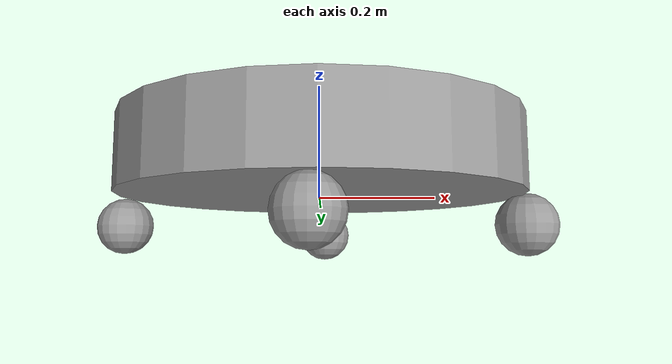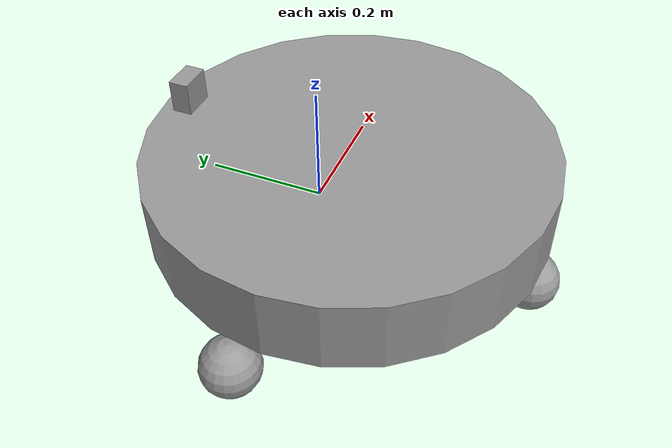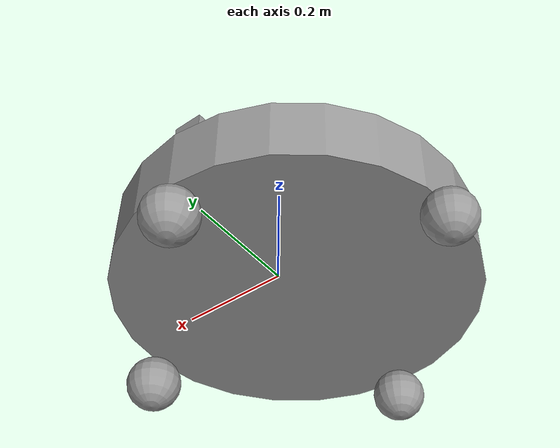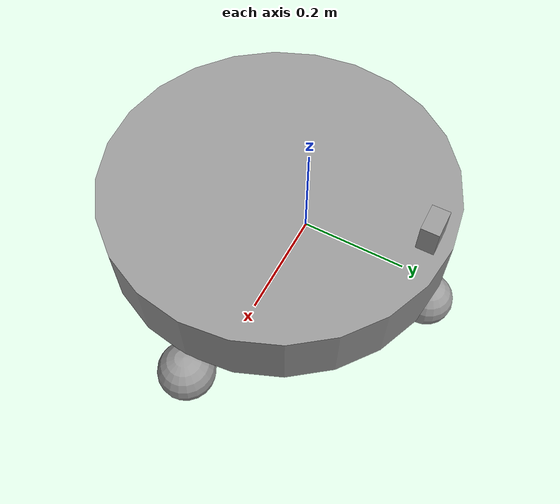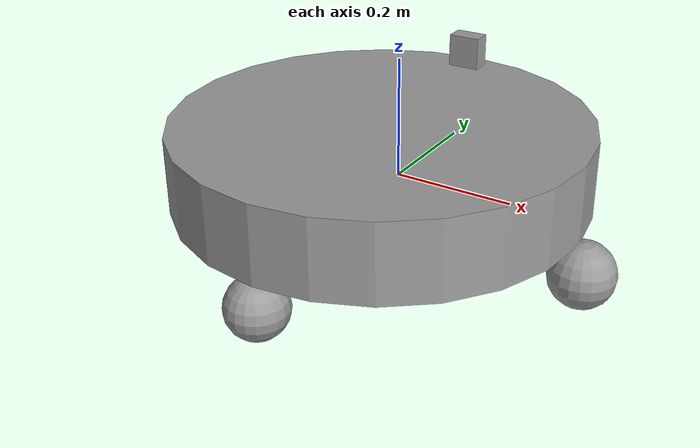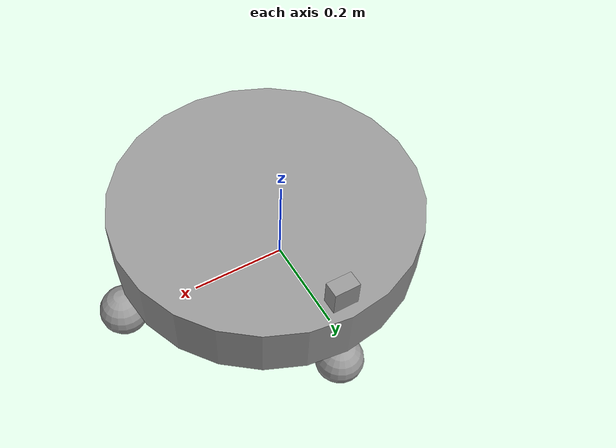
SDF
<?xml version='1.0'?>
<sdf version='1.6'>
  <model name='robo'>
    <link name='link_1'>
      <inertial>
        <mass>0.0548388</mass>
        <inertia>
          <ixx>0.0015762</ixx>
          <ixy>0</ixy>
          <ixz>0</ixz>
          <iyy>0.0015762</iyy>
          <iyz>0</iyz>
          <izz>0.00300979</izz>
        </inertia>
        <pose frame=''>0 0 0 0 -0 0</pose>
      </inertial>
      <pose frame=''>0.002875 -0.057073 0.058436 0 -0 0</pose>
      <gravity>1</gravity>
      <self_collide>0</self_collide>
      <kinematic>0</kinematic>
      <enable_wind>0</enable_wind>
      <visual name='visual'>
        <pose frame=''>0 0 0 0 -0 0</pose>
        <geometry>
          <cylinder>
            <radius>0.331314</radius>
            <length>0.124909</length>
          </cylinder>
        </geometry>
        <material>
          <lighting>1</lighting>
          <script>
            <uri>file://media/materials/scripts/gazebo.material</uri>
            <name>Gazebo/Grey</name>
          </script>
          <emissive>0 0 0 1</emissive>
          <shader type='vertex'>
            <normal_map>__default__</normal_map>
          </shader>
          <ambient>0.3 0.3 0.3 1</ambient>
          <diffuse>0.7 0.7 0.7 1</diffuse>
          <specular>0.01 0.01 0.01 1</specular>
        </material>
        <transparency>0</transparency>
        <cast_shadows>1</cast_shadows>
      </visual>
      <collision name='collision'>
        <laser_retro>0</laser_retro>
        <max_contacts>10</max_contacts>
        <pose frame=''>0 0 0 0 -0 0</pose>
        <geometry>
          <cylinder>
            <radius>0.331314</radius>
            <length>0.124909</length>
          </cylinder>
        </geometry>
        <surface>
          <friction>
            <ode>
              <mu>1</mu>
              <mu2>1</mu2>
              <fdir1>0 0 0</fdir1>
              <slip1>0</slip1>
              <slip2>0</slip2>
            </ode>
            <torsional>
              <coefficient>1</coefficient>
              <patch_radius>0</patch_radius>
              <surface_radius>0</surface_radius>
              <use_patch_radius>1</use_patch_radius>
              <ode>
                <slip>0</slip>
              </ode>
            </torsional>
          </friction>
          <bounce>
            <restitution_coefficient>0</restitution_coefficient>
            <threshold>1e+06</threshold>
          </bounce>
          <contact>
            <collide_without_contact>0</collide_without_contact>
            <collide_without_contact_bitmask>1</collide_without_contact_bitmask>
            <collide_bitmask>1</collide_bitmask>
            <ode>
              <soft_cfm>0</soft_cfm>
              <soft_erp>0.2</soft_erp>
              <kp>1e+13</kp>
              <kd>1</kd>
              <max_vel>0.01</max_vel>
              <min_depth>0</min_depth>
            </ode>
            <bullet>
              <split_impulse>1</split_impulse>
              <split_impulse_penetration_threshold>-0.01</split_impulse_penetration_threshold>
              <soft_cfm>0</soft_cfm>
              <soft_erp>0.2</soft_erp>
              <kp>1e+13</kp>
              <kd>1</kd>
            </bullet>
          </contact>
        </surface>
      </collision>
    </link>
    <link name='link_2'>
      <inertial>
        <mass>0.00110598</mass>
        <inertia>
          <ixx>1.18e-06</ixx>
          <ixy>0</ixy>
          <ixz>0</ixz>
          <iyy>1.18e-06</iyy>
          <iyz>0</iyz>
          <izz>1.18e-06</izz>
        </inertia>
        <pose frame=''>0 0 0 0 -0 0</pose>
      </inertial>
      <pose frame=''>0.342347 -0.056128 -0.050289 0 -0 0</pose>
      <gravity>1</gravity>
      <self_collide>0</self_collide>
      <kinematic>0</kinematic>
      <enable_wind>0</enable_wind>
      <visual name='visual'>
        <pose frame=''>0 0 0 0 -0 0</pose>
        <geometry>
          <sphere>
            <radius>0.05171</radius>
          </sphere>
        </geometry>
        <material>
          <lighting>1</lighting>
          <script>
            <uri>file://media/materials/scripts/gazebo.material</uri>
            <name>Gazebo/Grey</name>
          </script>
          <emissive>0 0 0 1</emissive>
          <shader type='vertex'>
            <normal_map>__default__</normal_map>
          </shader>
          <ambient>0.3 0.3 0.3 1</ambient>
          <diffuse>0.7 0.7 0.7 1</diffuse>
          <specular>0.01 0.01 0.01 1</specular>
        </material>
        <transparency>0</transparency>
        <cast_shadows>1</cast_shadows>
      </visual>
      <collision name='collision'>
        <laser_retro>0</laser_retro>
        <max_contacts>10</max_contacts>
        <pose frame=''>0 0 0 0 -0 0</pose>
        <geometry>
          <sphere>
            <radius>0.05171</radius>
          </sphere>
        </geometry>
        <surface>
          <friction>
            <ode>
              <mu>1</mu>
              <mu2>1</mu2>
              <fdir1>0 0 0</fdir1>
              <slip1>0</slip1>
              <slip2>0</slip2>
            </ode>
            <torsional>
              <coefficient>1</coefficient>
              <patch_radius>0</patch_radius>
              <surface_radius>0</surface_radius>
              <use_patch_radius>1</use_patch_radius>
              <ode>
                <slip>0</slip>
              </ode>
            </torsional>
          </friction>
          <bounce>
            <restitution_coefficient>0</restitution_coefficient>
            <threshold>1e+06</threshold>
          </bounce>
          <contact>
            <collide_without_contact>0</collide_without_contact>
            <collide_without_contact_bitmask>1</collide_without_contact_bitmask>
            <collide_bitmask>1</collide_bitmask>
            <ode>
              <soft_cfm>0</soft_cfm>
              <soft_erp>0.2</soft_erp>
              <kp>1e+13</kp>
              <kd>1</kd>
              <max_vel>0.01</max_vel>
              <min_depth>0</min_depth>
            </ode>
            <bullet>
              <split_impulse>1</split_impulse>
              <split_impulse_penetration_threshold>-0.01</split_impulse_penetration_threshold>
              <soft_cfm>0</soft_cfm>
              <soft_erp>0.2</soft_erp>
              <kp>1e+13</kp>
              <kd>1</kd>
            </bullet>
          </contact>
        </surface>
      </collision>
    </link>
    <link name='link_2_clone'>
      <inertial>
        <mass>0.00090369</mass>
        <inertia>
          <ixx>8.4e-07</ixx>
          <ixy>0</ixy>
          <ixz>0</ixz>
          <iyy>8.4e-07</iyy>
          <iyz>0</iyz>
          <izz>8.4e-07</izz>
        </inertia>
        <pose frame=''>0 0 0 0 -0 0</pose>
      </inertial>
      <pose frame=''>-0.00863 -0.366527 -0.051762 0 -0 0</pose>
      <gravity>1</gravity>
      <self_collide>0</self_collide>
      <kinematic>0</kinematic>
      <enable_wind>0</enable_wind>
      <visual name='visual'>
        <pose frame=''>0 0 0 0 -0 0</pose>
        <geometry>
          <sphere>
            <radius>0.0483417</radius>
          </sphere>
        </geometry>
        <material>
          <lighting>1</lighting>
          <script>
            <uri>file://media/materials/scripts/gazebo.material</uri>
            <name>Gazebo/Grey</name>
          </script>
          <shader type='vertex'>
            <normal_map>__default__</normal_map>
          </shader>
          <emissive>0 0 0 1</emissive>
          <ambient>0.3 0.3 0.3 1</ambient>
          <diffuse>0.7 0.7 0.7 1</diffuse>
          <specular>0.01 0.01 0.01 1</specular>
        </material>
        <transparency>0</transparency>
        <cast_shadows>1</cast_shadows>
      </visual>
      <collision name='collision'>
        <laser_retro>0</laser_retro>
        <max_contacts>10</max_contacts>
        <pose frame=''>0 0 0 0 -0 0</pose>
        <geometry>
          <sphere>
            <radius>0.048342</radius>
          </sphere>
        </geometry>
        <surface>
          <friction>
            <ode>
              <mu>1</mu>
              <mu2>1</mu2>
              <fdir1>0 0 0</fdir1>
              <slip1>0</slip1>
              <slip2>0</slip2>
            </ode>
            <torsional>
              <coefficient>1</coefficient>
              <patch_radius>0</patch_radius>
              <surface_radius>0</surface_radius>
              <use_patch_radius>1</use_patch_radius>
              <ode>
                <slip>0</slip>
              </ode>
            </torsional>
          </friction>
          <bounce>
            <restitution_coefficient>0</restitution_coefficient>
            <threshold>1e+06</threshold>
          </bounce>
          <contact>
            <collide_without_contact>0</collide_without_contact>
            <collide_without_contact_bitmask>1</collide_without_contact_bitmask>
            <collide_bitmask>1</collide_bitmask>
            <ode>
              <soft_cfm>0</soft_cfm>
              <soft_erp>0.2</soft_erp>
              <kp>1e+13</kp>
              <kd>1</kd>
              <max_vel>0.01</max_vel>
              <min_depth>0</min_depth>
            </ode>
            <bullet>
              <split_impulse>1</split_impulse>
              <split_impulse_penetration_threshold>-0.01</split_impulse_penetration_threshold>
              <soft_cfm>0</soft_cfm>
              <soft_erp>0.2</soft_erp>
              <kp>1e+13</kp>
              <kd>1</kd>
            </bullet>
          </contact>
        </surface>
      </collision>
    </link>
    <link name='link_2_clone_0'>
      <inertial>
        <mass>0.00083886</mass>
        <inertia>
          <ixx>7.5e-07</ixx>
          <ixy>0</ixy>
          <ixz>0</ixz>
          <iyy>7.5e-07</iyy>
          <iyz>0</iyz>
          <izz>7.5e-07</izz>
        </inertia>
        <pose frame=''>0 0 0 0 -0 0</pose>
      </inertial>
      <pose frame=''>-0.333667 -0.006901 -0.049628 0 -0 0</pose>
      <gravity>1</gravity>
      <self_collide>0</self_collide>
      <kinematic>0</kinematic>
      <enable_wind>0</enable_wind>
      <visual name='visual'>
        <pose frame=''>0 0 0 0 -0 0</pose>
        <geometry>
          <sphere>
            <radius>0.0471569</radius>
          </sphere>
        </geometry>
        <material>
          <lighting>1</lighting>
          <script>
            <uri>file://media/materials/scripts/gazebo.material</uri>
            <name>Gazebo/Grey</name>
          </script>
          <shader type='vertex'>
            <normal_map>__default__</normal_map>
          </shader>
          <ambient>0.3 0.3 0.3 1</ambient>
          <diffuse>0.7 0.7 0.7 1</diffuse>
          <specular>0.01 0.01 0.01 1</specular>
          <emissive>0 0 0 1</emissive>
        </material>
        <transparency>0</transparency>
        <cast_shadows>1</cast_shadows>
      </visual>
      <collision name='collision'>
        <laser_retro>0</laser_retro>
        <max_contacts>10</max_contacts>
        <pose frame=''>0 0 0 0 -0 0</pose>
        <geometry>
          <sphere>
            <radius>0.047157</radius>
          </sphere>
        </geometry>
        <surface>
          <friction>
            <ode>
              <mu>1</mu>
              <mu2>1</mu2>
              <fdir1>0 0 0</fdir1>
              <slip1>0</slip1>
              <slip2>0</slip2>
            </ode>
            <torsional>
              <coefficient>1</coefficient>
              <patch_radius>0</patch_radius>
              <surface_radius>0</surface_radius>
              <use_patch_radius>1</use_patch_radius>
              <ode>
                <slip>0</slip>
              </ode>
            </torsional>
          </friction>
          <bounce>
            <restitution_coefficient>0</restitution_coefficient>
            <threshold>1e+06</threshold>
          </bounce>
          <contact>
            <collide_without_contact>0</collide_without_contact>
            <collide_without_contact_bitmask>1</collide_without_contact_bitmask>
            <collide_bitmask>1</collide_bitmask>
            <ode>
              <soft_cfm>0</soft_cfm>
              <soft_erp>0.2</soft_erp>
              <kp>1e+13</kp>
              <kd>1</kd>
              <max_vel>0.01</max_vel>
              <min_depth>0</min_depth>
            </ode>
            <bullet>
              <split_impulse>1</split_impulse>
              <split_impulse_penetration_threshold>-0.01</split_impulse_penetration_threshold>
              <soft_cfm>0</soft_cfm>
              <soft_erp>0.2</soft_erp>
              <kp>1e+13</kp>
              <kd>1</kd>
            </bullet>
          </contact>
        </surface>
      </collision>
    </link>
    <link name='link_2_clone_1'>
      <inertial>
        <mass>0.00099348</mass>
        <inertia>
          <ixx>9.9e-07</ixx>
          <ixy>0</ixy>
          <ixz>0</ixz>
          <iyy>9.9e-07</iyy>
          <iyz>0</iyz>
          <izz>9.9e-07</izz>
        </inertia>
        <pose frame=''>0 0 0 0 -0 0</pose>
      </inertial>
      <pose frame=''>0.008679 0.258864 -0.053212 0 -0 0</pose>
      <gravity>1</gravity>
      <self_collide>0</self_collide>
      <kinematic>0</kinematic>
      <enable_wind>0</enable_wind>
      <visual name='visual'>
        <pose frame=''>0 0 0 0 -0 0</pose>
        <geometry>
          <sphere>
            <radius>0.049893</radius>
          </sphere>
        </geometry>
        <material>
          <lighting>1</lighting>
          <script>
            <uri>file://media/materials/scripts/gazebo.material</uri>
            <name>Gazebo/Grey</name>
          </script>
          <shader type='vertex'>
            <normal_map>__default__</normal_map>
          </shader>
          <ambient>0.3 0.3 0.3 1</ambient>
          <diffuse>0.7 0.7 0.7 1</diffuse>
          <specular>0.01 0.01 0.01 1</specular>
          <emissive>0 0 0 1</emissive>
        </material>
        <transparency>0</transparency>
        <cast_shadows>1</cast_shadows>
      </visual>
      <collision name='collision'>
        <laser_retro>0</laser_retro>
        <max_contacts>10</max_contacts>
        <pose frame=''>0 0 0 0 -0 0</pose>
        <geometry>
          <sphere>
            <radius>0.049893</radius>
          </sphere>
        </geometry>
        <surface>
          <friction>
            <ode>
              <mu>1</mu>
              <mu2>1</mu2>
              <fdir1>0 0 0</fdir1>
              <slip1>0</slip1>
              <slip2>0</slip2>
            </ode>
            <torsional>
              <coefficient>1</coefficient>
              <patch_radius>0</patch_radius>
              <surface_radius>0</surface_radius>
              <use_patch_radius>1</use_patch_radius>
              <ode>
                <slip>0</slip>
              </ode>
            </torsional>
          </friction>
          <bounce>
            <restitution_coefficient>0</restitution_coefficient>
            <threshold>1e+06</threshold>
          </bounce>
          <contact>
            <collide_without_contact>0</collide_without_contact>
            <collide_without_contact_bitmask>1</collide_without_contact_bitmask>
            <collide_bitmask>1</collide_bitmask>
            <ode>
              <soft_cfm>0</soft_cfm>
              <soft_erp>0.2</soft_erp>
              <kp>1e+13</kp>
              <kd>1</kd>
              <max_vel>0.01</max_vel>
              <min_depth>0</min_depth>
            </ode>
            <bullet>
              <split_impulse>1</split_impulse>
              <split_impulse_penetration_threshold>-0.01</split_impulse_penetration_threshold>
              <soft_cfm>0</soft_cfm>
              <soft_erp>0.2</soft_erp>
              <kp>1e+13</kp>
              <kd>1</kd>
            </bullet>
          </contact>
        </surface>
      </collision>
    </link>
    <link name='link_3'>
      <inertial>
        <mass>0.000106123</mass>
        <inertia>
          <ixx>4.118e-08</ixx>
          <ixy>0</ixy>
          <ixz>0</ixz>
          <iyy>5.7356e-08</iyy>
          <iyz>0</iyz>
          <izz>3.52989e-08</izz>
        </inertia>
        <pose frame=''>0 0 0 0 -0 0</pose>
      </inertial>
      <pose frame=''>0.003365 0.233016 0.146456 0 -0 0</pose>
      <gravity>1</gravity>
      <self_collide>0</self_collide>
      <kinematic>0</kinematic>
      <enable_wind>0</enable_wind>
      <visual name='visual'>
        <pose frame=''>0 0 0 0 -0 0</pose>
        <geometry>
          <box>
            <size>0.053947 0.032881 0.059794</size>
          </box>
        </geometry>
        <material>
          <lighting>1</lighting>
          <script>
            <uri>file://media/materials/scripts/gazebo.material</uri>
            <name>Gazebo/Grey</name>
          </script>
          <shader type='vertex'>
            <normal_map>__default__</normal_map>
          </shader>
          <ambient>0.3 0.3 0.3 1</ambient>
          <diffuse>0.7 0.7 0.7 1</diffuse>
          <specular>0.01 0.01 0.01 1</specular>
          <emissive>0 0 0 1</emissive>
        </material>
        <transparency>0</transparency>
        <cast_shadows>1</cast_shadows>
      </visual>
      <collision name='collision'>
        <laser_retro>0</laser_retro>
        <max_contacts>10</max_contacts>
        <pose frame=''>0 0 0 0 -0 0</pose>
        <geometry>
          <box>
            <size>0.053947 0.032881 0.059794</size>
          </box>
        </geometry>
        <surface>
          <friction>
            <ode>
              <mu>1</mu>
              <mu2>1</mu2>
              <fdir1>0 0 0</fdir1>
              <slip1>0</slip1>
              <slip2>0</slip2>
            </ode>
            <torsional>
              <coefficient>1</coefficient>
              <patch_radius>0</patch_radius>
              <surface_radius>0</surface_radius>
              <use_patch_radius>1</use_patch_radius>
              <ode>
                <slip>0</slip>
              </ode>
            </torsional>
          </friction>
          <bounce>
            <restitution_coefficient>0</restitution_coefficient>
            <threshold>1e+06</threshold>
          </bounce>
          <contact>
            <collide_without_contact>0</collide_without_contact>
            <collide_without_contact_bitmask>1</collide_without_contact_bitmask>
            <collide_bitmask>1</collide_bitmask>
            <ode>
              <soft_cfm>0</soft_cfm>
              <soft_erp>0.2</soft_erp>
              <kp>1e+13</kp>
              <kd>1</kd>
              <max_vel>0.01</max_vel>
              <min_depth>0</min_depth>
            </ode>
            <bullet>
              <split_impulse>1</split_impulse>
              <split_impulse_penetration_threshold>-0.01</split_impulse_penetration_threshold>
              <soft_cfm>0</soft_cfm>
              <soft_erp>0.2</soft_erp>
              <kp>1e+13</kp>
              <kd>1</kd>
            </bullet>
          </contact>
        </surface>
      </collision>
    </link>
    <joint name='link_1_JOINT_0' type='revolute'>
      <parent>link_1</parent>
      <child>link_2</child>
      <pose frame=''>0 0 0 0 -0 0</pose>
      <axis>
        <xyz>1 0 0</xyz>
        <use_parent_model_frame>0</use_parent_model_frame>
        <limit>
          <lower>-1.79769e+308</lower>
          <upper>1.79769e+308</upper>
          <effort>-1</effort>
          <velocity>-1</velocity>
        </limit>
        <dynamics>
          <spring_reference>0</spring_reference>
          <spring_stiffness>0</spring_stiffness>
          <damping>0</damping>
          <friction>0</friction>
        </dynamics>
      </axis>
      <physics>
        <ode>
          <limit>
            <cfm>0</cfm>
            <erp>0.2</erp>
          </limit>
          <suspension>
            <cfm>0</cfm>
            <erp>0.2</erp>
          </suspension>
        </ode>
      </physics>
    </joint>
    <joint name='link_1_JOINT_1' type='revolute'>
      <parent>link_1</parent>
      <child>link_2_clone</child>
      <pose frame=''>0 0 0 0 -0 0</pose>
      <axis>
        <xyz>1 0 0</xyz>
        <use_parent_model_frame>0</use_parent_model_frame>
        <limit>
          <lower>-1.79769e+308</lower>
          <upper>1.79769e+308</upper>
          <effort>-1</effort>
          <velocity>-1</velocity>
        </limit>
        <dynamics>
          <spring_reference>0</spring_reference>
          <spring_stiffness>0</spring_stiffness>
          <damping>0</damping>
          <friction>0</friction>
        </dynamics>
      </axis>
      <physics>
        <ode>
          <limit>
            <cfm>0</cfm>
            <erp>0.2</erp>
          </limit>
          <suspension>
            <cfm>0</cfm>
            <erp>0.2</erp>
          </suspension>
        </ode>
      </physics>
    </joint>
    <joint name='link_1_JOINT_2' type='revolute'>
      <parent>link_1</parent>
      <child>link_2_clone_1</child>
      <pose frame=''>0 0 0 0 -0 0</pose>
      <axis>
        <xyz>1 0 0</xyz>
        <use_parent_model_frame>0</use_parent_model_frame>
        <limit>
          <lower>-1.79769e+308</lower>
          <upper>1.79769e+308</upper>
          <effort>-1</effort>
          <velocity>-1</velocity>
        </limit>
        <dynamics>
          <spring_reference>0</spring_reference>
          <spring_stiffness>0</spring_stiffness>
          <damping>0</damping>
          <friction>0</friction>
        </dynamics>
      </axis>
      <physics>
        <ode>
          <limit>
            <cfm>0</cfm>
            <erp>0.2</erp>
          </limit>
          <suspension>
            <cfm>0</cfm>
            <erp>0.2</erp>
          </suspension>
        </ode>
      </physics>
    </joint>
    <joint name='link_1_JOINT_3' type='revolute'>
      <parent>link_1</parent>
      <child>link_2_clone_0</child>
      <pose frame=''>0 0 0 0 -0 0</pose>
      <axis>
        <xyz>1 0 0</xyz>
        <use_parent_model_frame>0</use_parent_model_frame>
        <limit>
          <lower>-1.79769e+308</lower>
          <upper>1.79769e+308</upper>
          <effort>-1</effort>
          <velocity>-1</velocity>
        </limit>
        <dynamics>
          <spring_reference>0</spring_reference>
          <spring_stiffness>0</spring_stiffness>
          <damping>0</damping>
          <friction>0</friction>
        </dynamics>
      </axis>
      <physics>
        <ode>
          <limit>
            <cfm>0</cfm>
            <erp>0.2</erp>
          </limit>
          <suspension>
            <cfm>0</cfm>
            <erp>0.2</erp>
          </suspension>
        </ode>
      </physics>
    </joint>
    <joint name='link_1_JOINT_4' type='revolute'>
      <parent>link_1</parent>
      <child>link_3</child>
      <pose frame=''>0 0 0 0 -0 0</pose>
      <axis>
        <xyz>1 0 0</xyz>
        <use_parent_model_frame>0</use_parent_model_frame>
        <limit>
          <lower>-1.79769e+308</lower>
          <upper>1.79769e+308</upper>
          <effort>-1</effort>
          <velocity>-1</velocity>
        </limit>
        <dynamics>
          <spring_reference>0</spring_reference>
          <spring_stiffness>0</spring_stiffness>
          <damping>0</damping>
          <friction>0</friction>
        </dynamics>
      </axis>
      <physics>
        <ode>
          <limit>
            <cfm>0</cfm>
            <erp>0.2</erp>
          </limit>
          <suspension>
            <cfm>0</cfm>
            <erp>0.2</erp>
          </suspension>
        </ode>
      </physics>
    </joint>
    <static>0</static>
    <allow_auto_disable>1</allow_auto_disable>
  </model>
</sdf>
